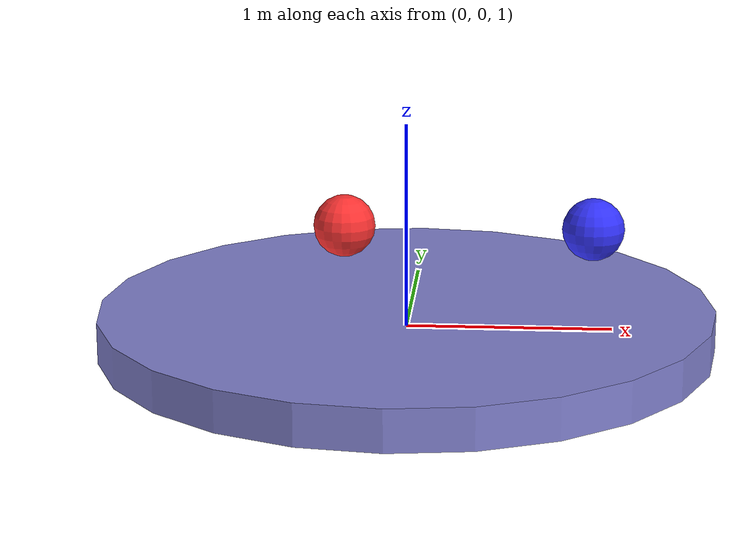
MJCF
<mujoco>
  <option gravity="0 0 -9.81"/>
  <worldbody>
    <body name="platform" pos="0 0 1">
      <geom type="cylinder" size="1.5 0.1" rgba="0.5 0.5 0.8 1" friction="0.5 0.5 0.5"/>
    </body>
    <body name="weight1" pos="-0.3 0 1.5">
      <geom type="sphere" size="0.15" density="1300" rgba="1 0.2 0.2 1"/>
      <joint name="w1" type="free"/>
    </body>
    <body name="weight2" pos="0.9 0 1.5">
      <geom type="sphere" size="0.15" density="433.3" rgba="0.2 0.2 1 1"/>
      <joint name="w2" type="free"/>
    </body>
  </worldbody>
</mujoco>
